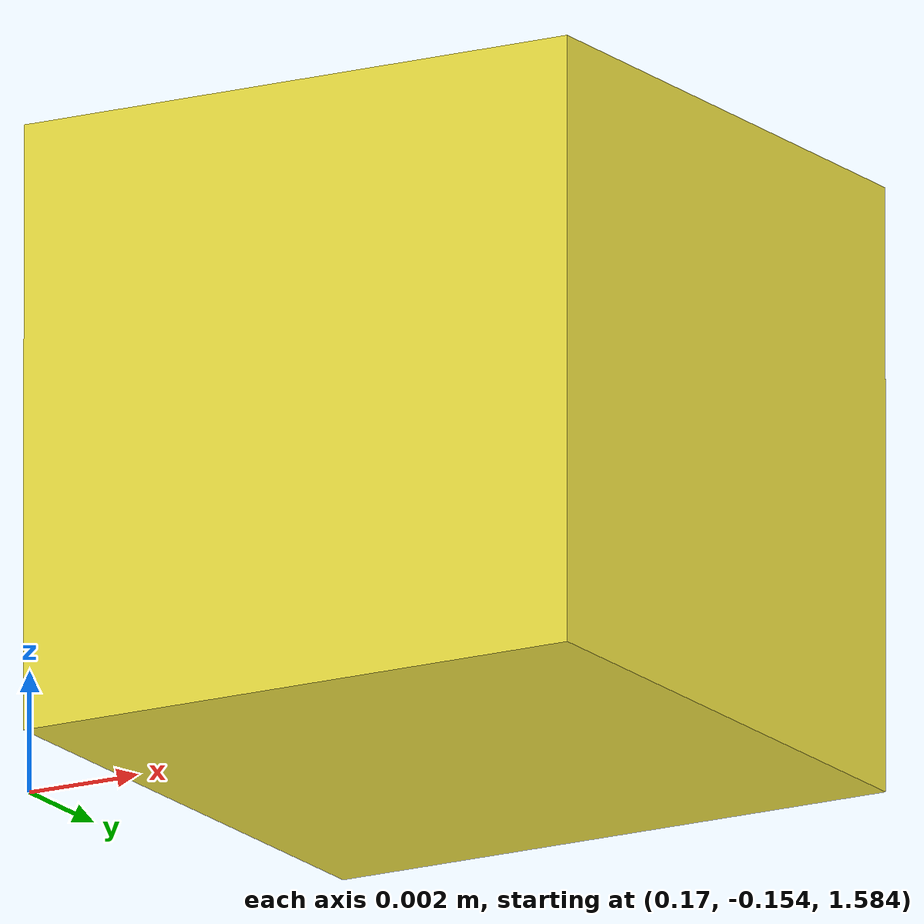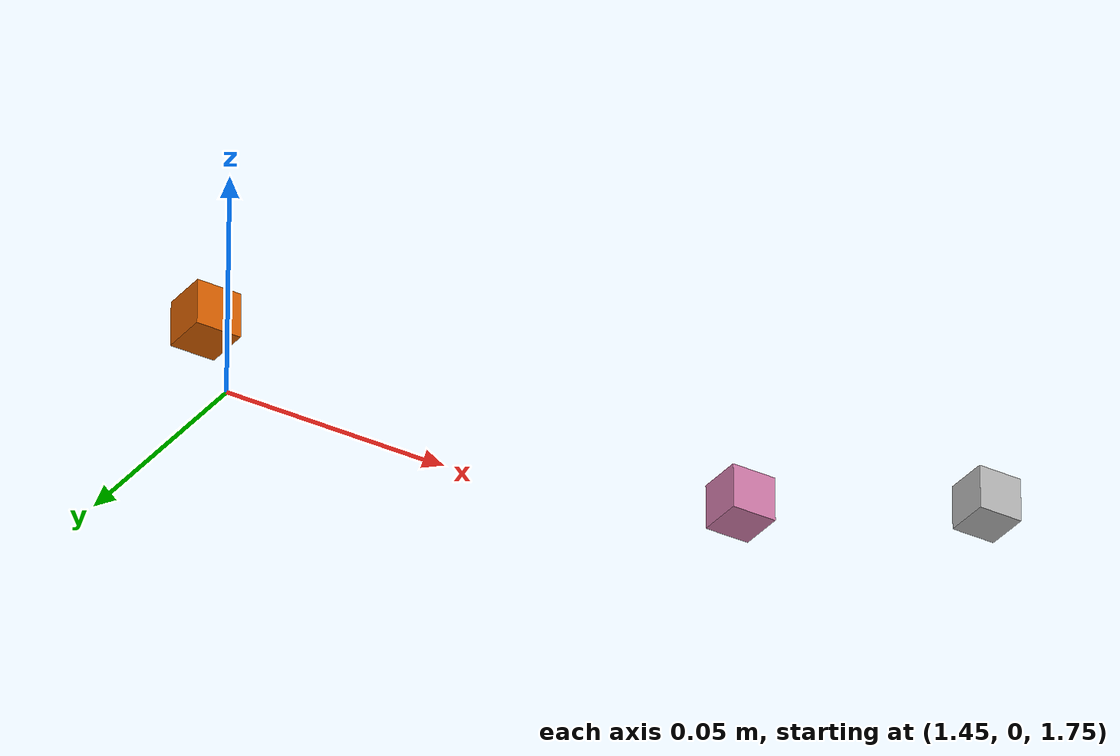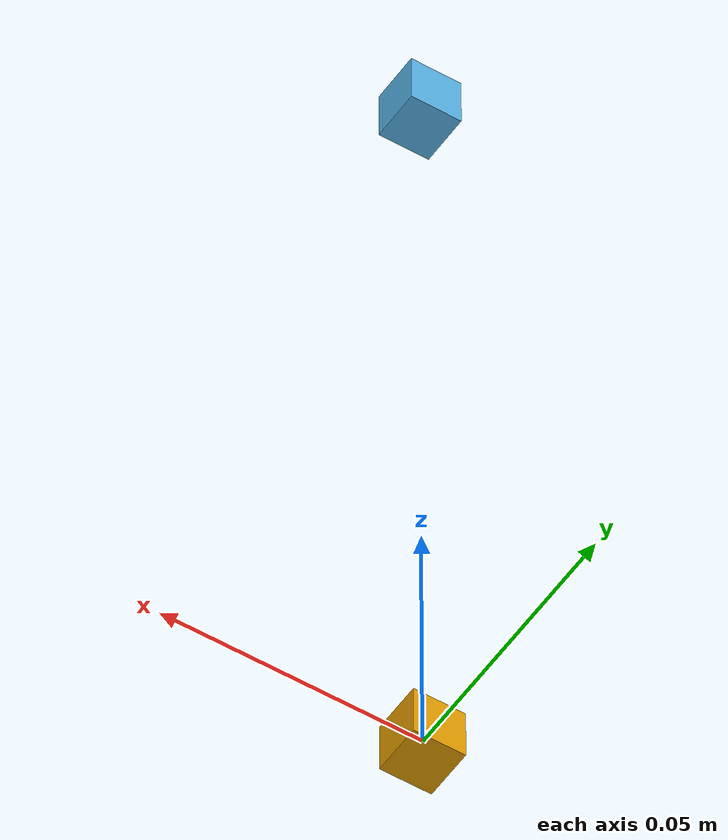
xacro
<?xml version="1.0"?>
<robot name="IRB 4600/40" xmlns:xacro="http://ros.org/wiki/xacro">
  <link name="base_link">
    <visual name="shape_59">
      <geometry>
        <box size="0.01 0.01 0.01"/>
      </geometry>
    </visual>
    <visual name="transform_161">
      <geometry>
        <box size="0.01 0.01 0.01"/>
      </geometry>
    </visual>
  </link>
  <joint name="A sensor" type="continuous">
    <parent link="base_link"/>
    <child link="solid_68"/>
    <axis xyz="0 0 1"/>
    <origin xyz="0 0 0.159498" rpy="0 0 0"/>
  </joint>
  <link name="solid_68">
    <visual name="shape_69">
      <geometry>
        <box size="0.01 0.01 0.01"/>
      </geometry>
    </visual>
    <visual name="transform_158">
      <geometry>
        <box size="0.01 0.01 0.01"/>
      </geometry>
    </visual>
  </link>
  <joint name="B sensor" type="continuous">
    <parent link="solid_68"/>
    <child link="solid_78"/>
    <axis xyz="0 1 0"/>
    <origin xyz="0.178445 -0.122498 0.334888" rpy="0 0 0"/>
  </joint>
  <link name="solid_78">
    <visual name="shape_79">
      <geometry>
        <box size="0.01 0.01 0.01"/>
      </geometry>
    </visual>
    <visual name="transform_155">
      <geometry>
        <box size="0.01 0.01 0.01"/>
      </geometry>
    </visual>
  </link>
  <joint name="C sensor" type="continuous">
    <parent link="solid_78"/>
    <child link="solid_88"/>
    <axis xyz="0 1 0"/>
    <origin xyz="-0.003447 -0.0267 1.095594" rpy="0 0 0"/>
  </joint>
  <link name="solid_88">
    <visual name="shape_89">
      <geometry>
        <box size="0.01 0.01 0.01"/>
      </geometry>
    </visual>
    <visual name="transform_152">
      <geometry>
        <box size="0.01 0.01 0.01"/>
      </geometry>
    </visual>
  </link>
  <joint name="D sensor" type="continuous">
    <parent link="solid_88"/>
    <child link="solid_98"/>
    <axis xyz="1 0 0"/>
    <origin xyz="0.340095 0.149198 0.174998" rpy="0 0 0"/>
  </joint>
  <link name="solid_98">
    <visual name="shape_99">
      <geometry>
        <box size="0.01 0.01 0.01"/>
      </geometry>
    </visual>
    <visual name="transform_149">
      <geometry>
        <box size="0.01 0.01 0.01"/>
      </geometry>
    </visual>
  </link>
  <joint name="E sensor" type="continuous">
    <parent link="solid_98"/>
    <child link="solid_108"/>
    <axis xyz="0 1 0"/>
    <origin xyz="0.929888 0 0" rpy="0 0 0"/>
  </joint>
  <link name="solid_108">
    <visual name="shape_109">
      <geometry>
        <box size="0.01 0.01 0.01"/>
      </geometry>
    </visual>
    <visual name="transform_146">
      <geometry>
        <box size="0.01 0.01 0.01"/>
      </geometry>
    </visual>
  </link>
  <joint name="F sensor" type="continuous">
    <parent link="solid_108"/>
    <child link="solid_118"/>
    <axis xyz="1 0 0"/>
    <origin xyz="0.125 0 0" rpy="0 0 0"/>
  </joint>
  <link name="solid_118">
    <visual name="transform_119">
      <geometry>
        <box size="0.01 0.01 0.01"/>
      </geometry>
    </visual>
    <visual name="shape_135">
      <geometry>
        <box size="0.01 0.01 0.01"/>
      </geometry>
    </visual>
    <visual name="transform_143">
      <geometry>
        <box size="0.01 0.01 0.01"/>
      </geometry>
    </visual>
  </link>
  <link name="pen">
    <visual name="transform_164">
      <geometry>
        <box size="0.01 0.01 0.01"/>
      </geometry>
    </visual>
    <visual name="shape_165">
      <geometry>
        <box size="0.01 0.01 0.01"/>
      </geometry>
    </visual>
    <visual name="transform_171">
      <geometry>
        <box size="0.01 0.01 0.01"/>
      </geometry>
    </visual>
    <visual name="shape_172">
      <geometry>
        <box size="0.01 0.01 0.01"/>
      </geometry>
    </visual>
  </link>
  <joint name="solid_118_pen_joint" type="fixed">
    <parent link="solid_118"/>
    <child link="pen"/>
    <origin xyz="0.06 0 0.02" rpy="-1.0223011728634628e-06 -2.6509109577497154e-06 1.5707989776988271" />
  </joint>
</robot>
